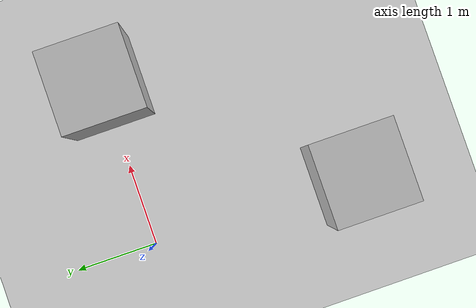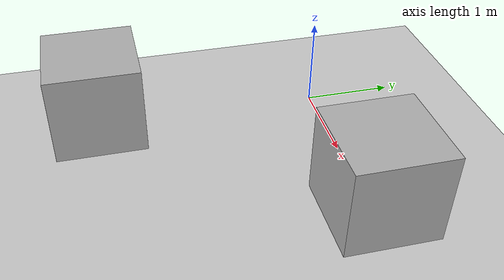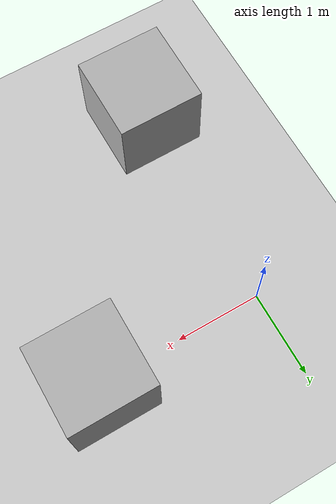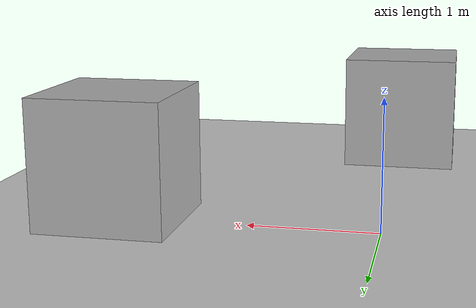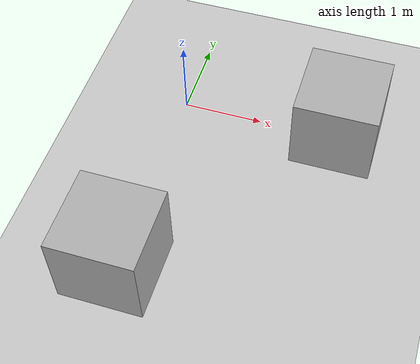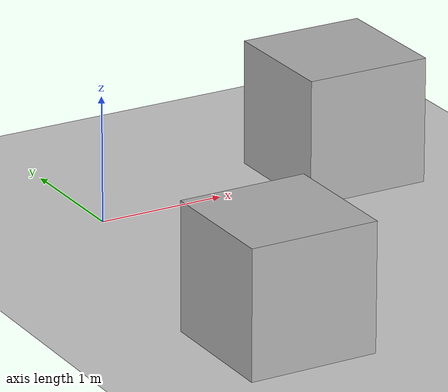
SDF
<?xml version="1.0" ?>

<sdf version="1.6">
  <world name="empty">
    <physics name="1ms" type="ignored">
      <max_step_size>0.001</max_step_size>
      <real_time_factor>1.0</real_time_factor>
    </physics>
    <plugin
      filename="gz-sim-physics-system"
      name="gz::sim::systems::Physics">
    </plugin>
    <plugin
      filename="gz-sim-user-commands-system"
      name="gz::sim::systems::UserCommands">
    </plugin>
    <plugin
      filename="gz-sim-scene-broadcaster-system"
      name="gz::sim::systems::SceneBroadcaster">
    </plugin>
    <plugin
      filename="gz-sim-contact-system"
      name="gz::sim::systems::Contact">
    </plugin>

    <plugin
      filename="gz-sim-sensors-system"
      name="gz::sim::systems::Sensors">
      <render_engine>ogre2</render_engine>
    </plugin>
    <plugin
      filename="gz-sim-imu-system"
      name="gz::sim::systems::Imu">
    </plugin>

    <light type="directional" name="sun">
      <cast_shadows>true</cast_shadows>
      <pose>0 0 10 0 0 0</pose>
      <diffuse>0.8 0.8 0.8 1</diffuse>
      <specular>0.2 0.2 0.2 1</specular>
      <attenuation>
        <range>1000</range>
        <constant>0.9</constant>
        <linear>0.01</linear>
        <quadratic>0.001</quadratic>
      </attenuation>
      <direction>-0.5 0.1 -0.9</direction>
    </light>

    <gravity>0 0 -9.8000000000000007</gravity>
    <magnetic_field>5.5644999999999998e-06 2.2875799999999999e-05 -4.2388400000000002e-05</magnetic_field>
    <atmosphere type='adiabatic'/>
    <scene>
      <ambient>0.400000006 0.400000006 0.400000006 1</ambient>
      <background>0.699999988 0.699999988 0.699999988 1</background>
      <shadows>true</shadows>
    </scene>

    <model name="ground_plane">
      <static>true</static>
      <link name="link">
        <collision name="collision">
          <geometry>
            <plane>
              <normal>0 0 1</normal>
              <size>100 100</size>
            </plane>
          </geometry>
          <surface>
            <friction>
              <ode>
                <mu>50</mu>
              </ode>
            </friction>
            <bounce/>
            <contact/>
          </surface>
        </collision>
        <visual name="visual">
          <geometry>
            <plane>
              <normal>0 0 1</normal>
              <size>100 100</size>
            </plane>
          </geometry>
          <material>
            <ambient>0.8 0.8 0.8 1</ambient>
            <diffuse>0.8 0.8 0.8 1</diffuse>
            <specular>0.8 0.8 0.8 1</specular>
          </material>
        </visual>
      </link>
    </model>

    <model name='box'>
      <pose>0.023961 -2.53926 0.5 0 0 -0</pose>
      <link name='box_link'>
        <inertial>
          <inertia>
            <ixx>0.16666</ixx>
            <ixy>0</ixy>
            <ixz>0</ixz>
            <iyy>0.16666</iyy>
            <iyz>0</iyz>
            <izz>0.16666</izz>
          </inertia>
          <mass>1</mass>
          <pose>0 0 0 0 -0 0</pose>
        </inertial>
        <collision name='box_collision'>
          <geometry>
            <box>
              <size>1 1 1</size>
            </box>
          </geometry>
          <surface>
            <friction>
              <ode/>
            </friction>
            <bounce/>
            <contact/>
          </surface>
        </collision>
        <visual name='box_visual'>
          <geometry>
            <box>
              <size>1 1 1</size>
            </box>
          </geometry>
          <material>
            <ambient>0.3 0.3 0.3 1</ambient>
            <diffuse>0.7 0.7 0.7 1</diffuse>
            <specular>1 1 1 1</specular>
          </material>
        </visual>
        <pose>0 0 0 0 -0 0</pose>
        <enable_wind>false</enable_wind>
      </link>
      <static>false</static>
      <self_collide>false</self_collide>
    </model>

    <model name='box2'>
      <pose>2 0 0.5 0 0 -0</pose>
      <link name='box2_link'>
        <inertial>
          <inertia>
            <ixx>0.16666</ixx>
            <ixy>0</ixy>
            <ixz>0</ixz>
            <iyy>0.16666</iyy>
            <iyz>0</iyz>
            <izz>0.16666</izz>
          </inertia>
          <mass>1</mass>
          <pose>0 0 0 0 -0 0</pose>
        </inertial>
        <collision name='box2_collision'>
          <geometry>
            <box>
              <size>1 1 1</size>
            </box>
          </geometry>
          <surface>
            <friction>
              <ode/>
            </friction>
            <bounce/>
            <contact/>
          </surface>
        </collision>
        <visual name='box2_visual'>
          <geometry>
            <box>
              <size>1 1 1</size>
            </box>
          </geometry>
          <material>
            <ambient>0.3 0.3 0.3 1</ambient>
            <diffuse>0.7 0.7 0.7 1</diffuse>
            <specular>1 1 1 1</specular>
          </material>
        </visual>
        <pose>0 0 0 0 -0 0</pose>
        <enable_wind>false</enable_wind>
      </link>
      <static>false</static>
      <self_collide>false</self_collide>
    </model>

  </world>
</sdf>
